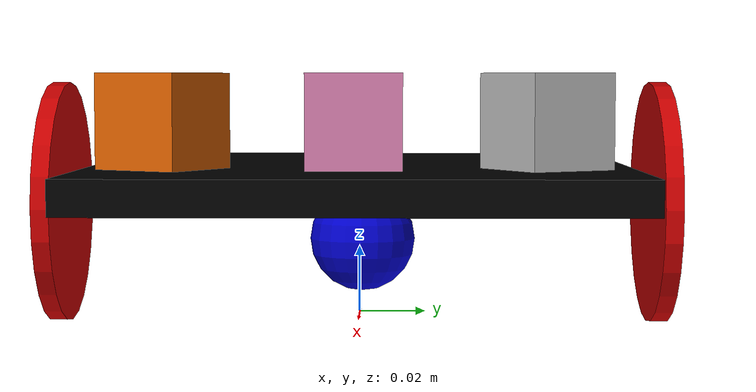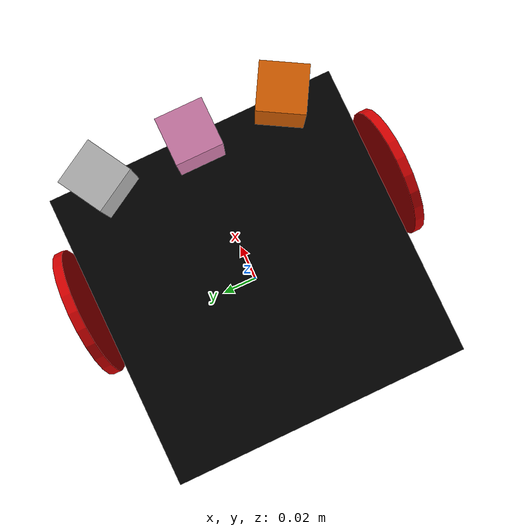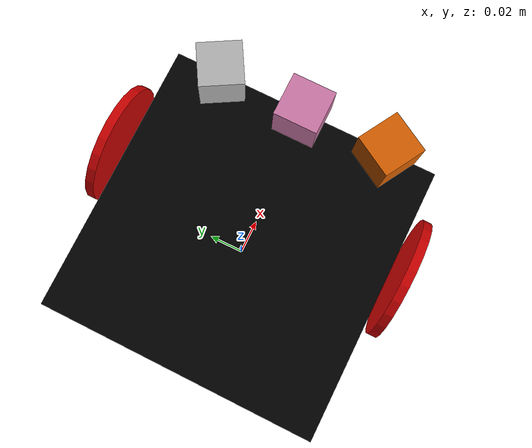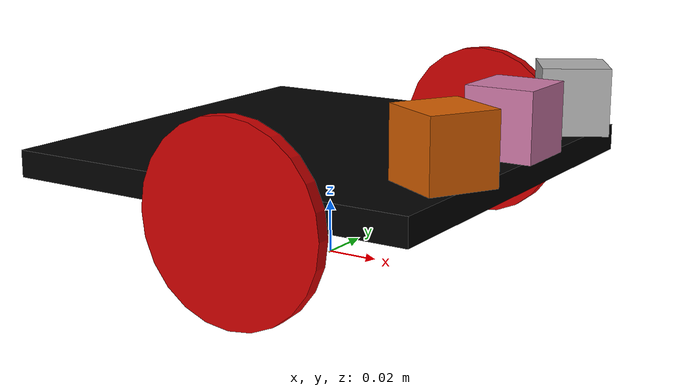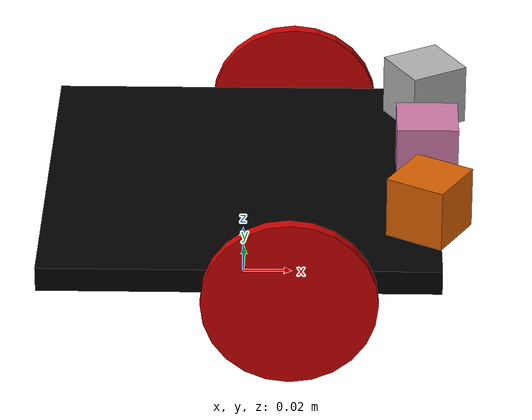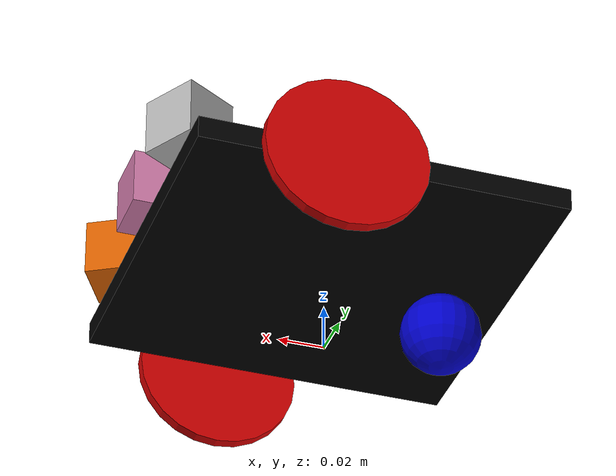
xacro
<?xml version="1.0"?>
<robot xmlns:xacro="http://www.ros.org/wiki/xacro" name="robot_tutorial">

  <xacro:property name="base_width" value="0.16"/>
  <xacro:property name="base_len" value="0.16"/>
  <xacro:property name="wheel_radius" value="0.035"/>
  <xacro:property name="base_wheel_gap" value="0.007"/>
  <xacro:property name="wheel_separation" value="0.15"/>
  <xacro:property name="wheel_joint_offset" value="0.02"/>

  <xacro:property name="caster_wheel_radius" value="${wheel_radius/2}"/>
  <xacro:property name="caster_wheel_mass" value="0.001"/>
  <xacro:property name="caster_wheel_joint_offset" value="-0.052"/>

  <!--Color Properties-->
  <material name="blue">
    <color rgba="0 0 0.8 1"/>
  </material>
  <material name="black">
    <color rgba="0 0 0 1"/>
  </material>
  <material name="white">
    <color rgba="1 1 1 1"/>
  </material>
  <material name="red">
    <color rgba="0.8 0.0 0.0 1.0"/>
  </material>

  <!--Interial macros-->
  <xacro:macro name="cylinder_inertia" params="m r h">
    <inertial>
      <mass value="${m}"/>
      <inertia ixx="${m*(3*r*r+h*h)/12}" ixy = "0" ixz = "0" iyy="${m*(3*r*r+h*h)/12}" iyz = "0" izz="${m*r*r/2}"/>
    </inertial>
  </xacro:macro>

  <xacro:macro name="box_inertia" params="m w h d">
    <inertial>
      <mass value="${m}"/>
      <inertia ixx="${m / 12.0 * (d*d + h*h)}" ixy="0.0" ixz="0.0" iyy="${m / 12.0 * (w*w + h*h)}" iyz="0.0" izz="${m / 12.0 * (w*w + d*d)}"/>
    </inertial>
  </xacro:macro>

  <xacro:macro name="sphere_inertia" params="m r">
    <inertial>
      <mass value="${m}"/>
      <inertia ixx="${2.0*m*(r*r)/5.0}" ixy="0.0" ixz="0.0" iyy="${2.0*m*(r*r)/5.0}" iyz="0.0" izz="${2.0*m*(r*r)/5.0}"/>
    </inertial>
  </xacro:macro>

  <!--Base Footprint-->
  <link name="base_footprint">
    <xacro:box_inertia m="10" w="0.001" h="0.001" d="0.001"/>
    <visual>
        <origin xyz="0 0 0" rpy="0 0 0" />
        <geometry>
            <box size="0.001 0.001 0.001" />
        </geometry>
    </visual>
  </link>

  <!--Base link-->
  <link name="base_link">
    <xacro:box_inertia m="10" w="${base_len}" h="${base_width}" d="0.01"/>
    <visual>
      <geometry>
        <box size="${base_len} ${base_width} 0.01"/>
      </geometry>
      <material name="black"/>
    </visual>
    <collision>
      <geometry>
        <box size="${base_len} ${base_width} 0.01"/>
      </geometry>
    </collision>
  </link>

  <!--base_link to base_footprint Joint-->
  <joint name="base_link_joint" type="fixed">
    <origin xyz="0 0 ${wheel_radius + 0.005}" rpy="0 0 0" />
    <parent link="base_footprint"/>
    <child link="base_link" />
  </joint>

  <!--Wheel link & joint macro-->
  <xacro:macro name="wheel" params="prefix reflect">
    <link name="${prefix}_wheel">
      <visual>
        <origin xyz="0 0 0" rpy="${pi/2} 0 0"/>
        <geometry>
          <cylinder radius="${wheel_radius}" length="0.005"/>
        </geometry>
        <material name="red"/>
      </visual>
      <collision>
        <origin xyz="0 0 0" rpy="${pi/2} 0 0"/>
        <geometry>
          <cylinder radius="${wheel_radius}" length="0.005"/>
        </geometry>
      </collision>
      <xacro:cylinder_inertia m="10" r="${wheel_radius}" h="0.005"/>
    </link>

    <joint name="${prefix}_wheel_joint" type="continuous">
      <axis xyz="0 1 0" rpy="0 0 0" />
      <parent link="base_link"/>
      <child link="${prefix}_wheel"/>
      <origin xyz="${wheel_joint_offset} ${((base_width/2)+base_wheel_gap)*reflect} -0.005" rpy="0 0 0"/>
    </joint>
  </xacro:macro>

  <!--Create Left & Right Wheel links/joints-->
  <xacro:wheel prefix="left" reflect="1"/>
  <xacro:wheel prefix="right" reflect="-1"/>

  <!--Caster Wheel Link-->
  <link name="caster_wheel">
    <visual>
      <origin xyz="0 0 0" rpy="0 0 0"/>
      <geometry>
        <sphere radius="${caster_wheel_radius}"/>
      </geometry>
      <material name="blue"/>
    </visual>
    <collision>
      <origin xyz="0 0 0" rpy="0 0 0"/>
      <geometry>
        <sphere radius="${caster_wheel_radius}"/>
      </geometry>
    </collision>
    <xacro:sphere_inertia m="10" r="${caster_wheel_radius}"/>
  </link>

  <!--Caster Wheel Joint-->
  <joint name="caster_wheel_joint" type="continuous">
    <axis xyz="0 1 0" rpy="0 0 0" />
    <parent link="base_link"/>
    <child link="caster_wheel"/>
    <origin xyz="${caster_wheel_joint_offset} 0 -${caster_wheel_radius+0.005}" rpy="0 0 0"/>
  </joint>

  <!--Laser-1 Joint-->
  <joint name="laser_1_joint" type="fixed">
    <axis xyz="0 1 0" />
    <origin xyz="0.075 -0.05 0.02" rpy="0 0 -0.523599" />
    <parent link="base_link" />
    <child link="laser_1_link" />
  </joint>

  <!--Laser-1 Link-->
  <link name="laser_1_link">
    <collision>
      <origin xyz="0 0 0" rpy="0 0 0" />
      <geometry>
        <box size="0.025 0.025 0.025" />
      </geometry>
    </collision>
    <visual>
      <origin xyz="0 0 0" rpy="0 0 0" />
      <geometry>
        <box size="0.025 0.025 0.025" />
      </geometry>
    </visual>
    <xacro:box_inertia m="1" w="0.025" h="0.025" d="0.025" />
  </link>

  <!--Laser-2 Joint-->
  <joint name="laser_2_joint" type="fixed">
    <axis xyz="0 1 0" />
    <origin xyz="0.075 0 0.02" rpy="0 0 0" />
    <parent link="base_link" />
    <child link="laser_2_link" />
  </joint>

  <!--Laser-2 Link-->
  <link name="laser_2_link">
    <collision>
      <origin xyz="0 0 0" rpy="0 0 0" />
      <geometry>
        <box size="0.025 0.025 0.025" />
      </geometry>
    </collision>
    <visual>
      <origin xyz="0 0 0" rpy="0 0 0" />
      <geometry>
        <box size="0.025 0.025 0.025" />
      </geometry>
    </visual>
    <xacro:box_inertia m="1" w="0.025" h="0.025" d="0.025" />
  </link>

  <!--Laser-3 Joint-->
  <joint name="laser_3_joint" type="fixed">
    <axis xyz="0 1 0" />
    <origin xyz="0.075 0.05 0.02" rpy="0 0 0.523599" />
    <parent link="base_link" />
    <child link="laser_3_link" />
  </joint>

  <!--Laser-3 Link-->
  <link name="laser_3_link">
    <collision>
      <origin xyz="0 0 0" rpy="0 0 0" />
      <geometry>
        <box size="0.025 0.025 0.025" />
      </geometry>
    </collision>
    <visual>
      <origin xyz="0 0 0" rpy="0 0 0" />
      <geometry>
        <box size="0.025 0.025 0.025" />
      </geometry>
    </visual>
    <xacro:box_inertia m="1" w="0.025" h="0.025" d="0.025" />
  </link>

  <xacro:include filename="$(find ros_101_gazebo_rviz)/urdf/three_sensors_gazebo.xacro"/>

</robot>
